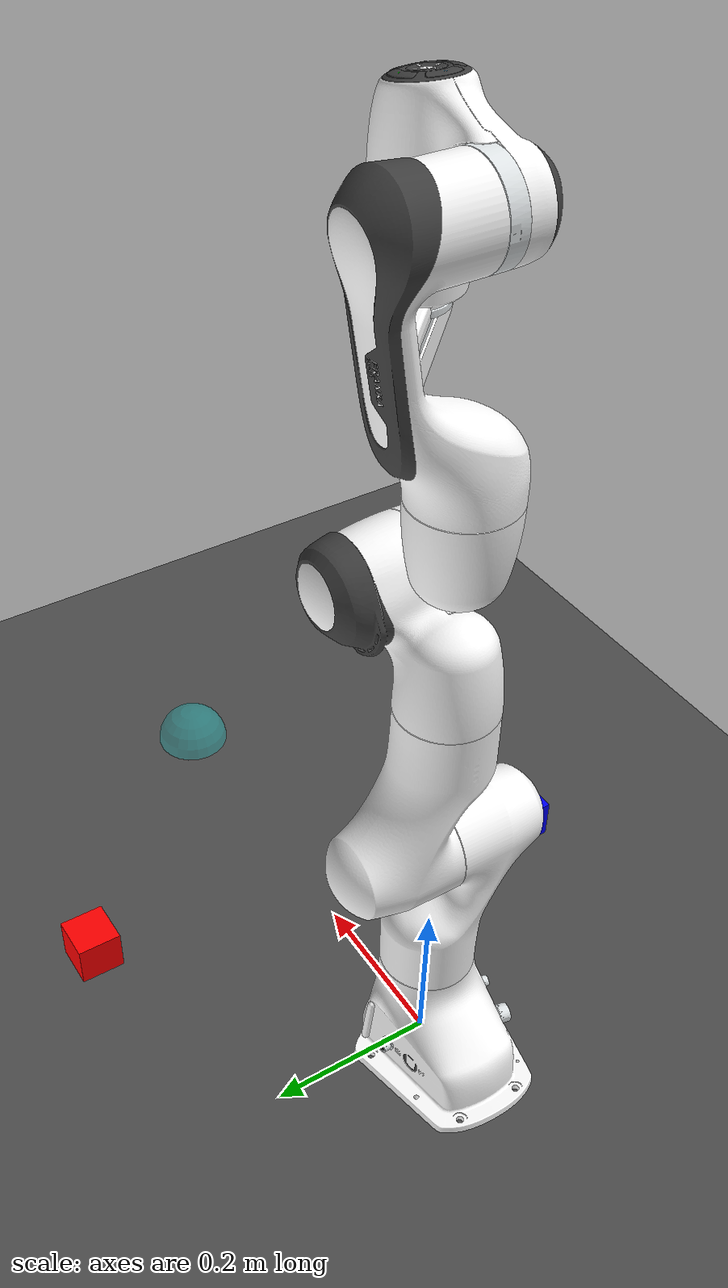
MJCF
<?xml version='1.0' encoding='utf-8'?>
<mujoco model="single_panda_stacking"><compiler angle="radian" meshdir="assets" autolimits="true" />

  <option integrator="implicitfast" />

  <default>
    <default class="panda">
      <material specular="0.5" shininess="0.25" />
      <joint armature="0.1" damping="1" axis="0 0 1" range="-2.8973 2.8973" />
      <general dyntype="none" biastype="affine" ctrlrange="-2.8973 2.8973" forcerange="-87 87" />
      <default class="finger">
        <joint axis="0 1 0" type="slide" range="0 0.04" />
      </default>

      <default class="visual">
        <geom type="mesh" contype="0" conaffinity="0" group="2" />
      </default>
      <default class="collision">
        <geom type="mesh" group="3" />
        <default class="fingertip_pad_collision_1">
          <geom type="box" size="0.0085 0.004 0.0085" pos="0 0.0055 0.0445" />
        </default>
        <default class="fingertip_pad_collision_2">
          <geom type="box" size="0.003 0.002 0.003" pos="0.0055 0.002 0.05" />
        </default>
        <default class="fingertip_pad_collision_3">
          <geom type="box" size="0.003 0.002 0.003" pos="-0.0055 0.002 0.05" />
        </default>
        <default class="fingertip_pad_collision_4">
          <geom type="box" size="0.003 0.002 0.0035" pos="0.0055 0.002 0.0395" />
        </default>
        <default class="fingertip_pad_collision_5">
          <geom type="box" size="0.003 0.002 0.0035" pos="-0.0055 0.002 0.0395" />
        </default>
      </default>
    </default>
  </default>

  <asset>
    <material class="panda" name="white" rgba="1 1 1 1" />
    <material class="panda" name="off_white" rgba="0.901961 0.921569 0.929412 1" />
    <material class="panda" name="black" rgba="0.25 0.25 0.25 1" />
    <material class="panda" name="green" rgba="0 1 0 1" />
    <material class="panda" name="light_blue" rgba="0.039216 0.541176 0.780392 1" />

    <mesh name="link0_c" file="E:/6-months-internship-projects/act2/franka_emika_panda/assets/link0.stl" />
    <mesh name="link1_c" file="E:/6-months-internship-projects/act2/franka_emika_panda/assets/link1.stl" />
    <mesh name="link2_c" file="E:/6-months-internship-projects/act2/franka_emika_panda/assets/link2.stl" />
    <mesh name="link3_c" file="E:/6-months-internship-projects/act2/franka_emika_panda/assets/link3.stl" />
    <mesh name="link4_c" file="E:/6-months-internship-projects/act2/franka_emika_panda/assets/link4.stl" />
    <mesh name="link5_c0" file="E:/6-months-internship-projects/act2/franka_emika_panda/assets/link5_collision_0.obj" />
    <mesh name="link5_c1" file="E:/6-months-internship-projects/act2/franka_emika_panda/assets/link5_collision_1.obj" />
    <mesh name="link5_c2" file="E:/6-months-internship-projects/act2/franka_emika_panda/assets/link5_collision_2.obj" />
    <mesh name="link6_c" file="E:/6-months-internship-projects/act2/franka_emika_panda/assets/link6.stl" />
    <mesh name="link7_c" file="E:/6-months-internship-projects/act2/franka_emika_panda/assets/link7.stl" />
    <mesh name="hand_c" file="E:/6-months-internship-projects/act2/franka_emika_panda/assets/hand.stl" />

    <mesh file="E:/6-months-internship-projects/act2/franka_emika_panda/assets/link0_0.obj" />
    <mesh file="E:/6-months-internship-projects/act2/franka_emika_panda/assets/link0_1.obj" />
    <mesh file="E:/6-months-internship-projects/act2/franka_emika_panda/assets/link0_2.obj" />
    <mesh file="E:/6-months-internship-projects/act2/franka_emika_panda/assets/link0_3.obj" />
    <mesh file="E:/6-months-internship-projects/act2/franka_emika_panda/assets/link0_4.obj" />
    <mesh file="E:/6-months-internship-projects/act2/franka_emika_panda/assets/link0_5.obj" />
    <mesh file="E:/6-months-internship-projects/act2/franka_emika_panda/assets/link0_7.obj" />
    <mesh file="E:/6-months-internship-projects/act2/franka_emika_panda/assets/link0_8.obj" />
    <mesh file="E:/6-months-internship-projects/act2/franka_emika_panda/assets/link0_9.obj" />
    <mesh file="E:/6-months-internship-projects/act2/franka_emika_panda/assets/link0_10.obj" />
    <mesh file="E:/6-months-internship-projects/act2/franka_emika_panda/assets/link0_11.obj" />
    <mesh file="E:/6-months-internship-projects/act2/franka_emika_panda/assets/link1.obj" />
    <mesh file="E:/6-months-internship-projects/act2/franka_emika_panda/assets/link2.obj" />
    <mesh file="E:/6-months-internship-projects/act2/franka_emika_panda/assets/link3_0.obj" />
    <mesh file="E:/6-months-internship-projects/act2/franka_emika_panda/assets/link3_1.obj" />
    <mesh file="E:/6-months-internship-projects/act2/franka_emika_panda/assets/link3_2.obj" />
    <mesh file="E:/6-months-internship-projects/act2/franka_emika_panda/assets/link3_3.obj" />
    <mesh file="E:/6-months-internship-projects/act2/franka_emika_panda/assets/link4_0.obj" />
    <mesh file="E:/6-months-internship-projects/act2/franka_emika_panda/assets/link4_1.obj" />
    <mesh file="E:/6-months-internship-projects/act2/franka_emika_panda/assets/link4_2.obj" />
    <mesh file="E:/6-months-internship-projects/act2/franka_emika_panda/assets/link4_3.obj" />
    <mesh file="E:/6-months-internship-projects/act2/franka_emika_panda/assets/link5_0.obj" />
    <mesh file="E:/6-months-internship-projects/act2/franka_emika_panda/assets/link5_1.obj" />
    <mesh file="E:/6-months-internship-projects/act2/franka_emika_panda/assets/link5_2.obj" />
    <mesh file="E:/6-months-internship-projects/act2/franka_emika_panda/assets/link6_0.obj" />
    <mesh file="E:/6-months-internship-projects/act2/franka_emika_panda/assets/link6_1.obj" />
    <mesh file="E:/6-months-internship-projects/act2/franka_emika_panda/assets/link6_2.obj" />
    <mesh file="E:/6-months-internship-projects/act2/franka_emika_panda/assets/link6_3.obj" />
    <mesh file="E:/6-months-internship-projects/act2/franka_emika_panda/assets/link6_4.obj" />
    <mesh file="E:/6-months-internship-projects/act2/franka_emika_panda/assets/link6_5.obj" />
    <mesh file="E:/6-months-internship-projects/act2/franka_emika_panda/assets/link6_6.obj" />
    <mesh file="E:/6-months-internship-projects/act2/franka_emika_panda/assets/link6_7.obj" />
    <mesh file="E:/6-months-internship-projects/act2/franka_emika_panda/assets/link6_8.obj" />
    <mesh file="E:/6-months-internship-projects/act2/franka_emika_panda/assets/link6_9.obj" />
    <mesh file="E:/6-months-internship-projects/act2/franka_emika_panda/assets/link6_10.obj" />
    <mesh file="E:/6-months-internship-projects/act2/franka_emika_panda/assets/link6_11.obj" />
    <mesh file="E:/6-months-internship-projects/act2/franka_emika_panda/assets/link6_12.obj" />
    <mesh file="E:/6-months-internship-projects/act2/franka_emika_panda/assets/link6_13.obj" />
    <mesh file="E:/6-months-internship-projects/act2/franka_emika_panda/assets/link6_14.obj" />
    <mesh file="E:/6-months-internship-projects/act2/franka_emika_panda/assets/link6_15.obj" />
    <mesh file="E:/6-months-internship-projects/act2/franka_emika_panda/assets/link6_16.obj" />
    <mesh file="E:/6-months-internship-projects/act2/franka_emika_panda/assets/link7_0.obj" />
    <mesh file="E:/6-months-internship-projects/act2/franka_emika_panda/assets/link7_1.obj" />
    <mesh file="E:/6-months-internship-projects/act2/franka_emika_panda/assets/link7_2.obj" />
    <mesh file="E:/6-months-internship-projects/act2/franka_emika_panda/assets/link7_3.obj" />
    <mesh file="E:/6-months-internship-projects/act2/franka_emika_panda/assets/link7_4.obj" />
    <mesh file="E:/6-months-internship-projects/act2/franka_emika_panda/assets/link7_5.obj" />
    <mesh file="E:/6-months-internship-projects/act2/franka_emika_panda/assets/link7_6.obj" />
    <mesh file="E:/6-months-internship-projects/act2/franka_emika_panda/assets/link7_7.obj" />
    <mesh file="E:/6-months-internship-projects/act2/franka_emika_panda/assets/hand_0.obj" />
    <mesh file="E:/6-months-internship-projects/act2/franka_emika_panda/assets/hand_1.obj" />
    <mesh file="E:/6-months-internship-projects/act2/franka_emika_panda/assets/hand_2.obj" />
    <mesh file="E:/6-months-internship-projects/act2/franka_emika_panda/assets/hand_3.obj" />
    <mesh file="E:/6-months-internship-projects/act2/franka_emika_panda/assets/hand_4.obj" />
    <mesh file="E:/6-months-internship-projects/act2/franka_emika_panda/assets/finger_0.obj" />
    <mesh file="E:/6-months-internship-projects/act2/franka_emika_panda/assets/finger_1.obj" />
  </asset>

  <keyframe>
    <key name="home" qpos="0 0 0 -1.57079 0 1.57079 -0.7853 0.04 0.04" ctrl="0 0 0 -1.57079 0 1.57079 -0.7853 255" />
  </keyframe>

  <worldbody><light directional="true" pos="0 0 3" dir="0 0 -1" /><geom name="floor_global" type="plane" pos="0 0 0" size="2 2 0.1" rgba=".3 .3 .3 1" /><body name="panda_base_mount" pos="0 0 0" euler="0 0 0"><body name="panda_link0" childclass="panda">
      <inertial mass="0.629769" pos="-0.041018 -0.00014 0.049974" fullinertia="0.00315 0.00388 0.004285 8.2904e-7 0.00015 8.2299e-6" />
      <geom mesh="link0_0" material="off_white" class="visual" />
      <geom mesh="link0_1" material="black" class="visual" />
      <geom mesh="link0_2" material="off_white" class="visual" />
      <geom mesh="link0_3" material="black" class="visual" />
      <geom mesh="link0_4" material="off_white" class="visual" />
      <geom mesh="link0_5" material="black" class="visual" />
      <geom mesh="link0_7" material="white" class="visual" />
      <geom mesh="link0_8" material="white" class="visual" />
      <geom mesh="link0_9" material="black" class="visual" />
      <geom mesh="link0_10" material="off_white" class="visual" />
      <geom mesh="link0_11" material="white" class="visual" />
      <geom mesh="link0_c" class="collision" />
      <body name="panda_link1" pos="0 0 0.333">
        <inertial mass="4.970684" pos="0.003875 0.002081 -0.04762" fullinertia="0.70337 0.70661 0.0091170 -0.00013900 0.0067720 0.019169" />
        <joint name="panda_joint1" />
        <geom material="white" mesh="link1" class="visual" />
        <geom mesh="link1_c" class="collision" />
        <body name="panda_link2" quat="1 -1 0 0">
          <inertial mass="0.646926" pos="-0.003141 -0.02872 0.003495" fullinertia="0.0079620 2.8110e-2 2.5995e-2 -3.925e-3 1.0254e-2 7.04e-4" />
          <joint name="panda_joint2" range="-1.7628 1.7628" />
          <geom material="white" mesh="link2" class="visual" />
          <geom mesh="link2_c" class="collision" />
          <body name="panda_link3" pos="0 -0.316 0" quat="1 1 0 0">
            <joint name="panda_joint3" />
            <inertial mass="3.228604" pos="2.7518e-2 3.9252e-2 -6.6502e-2" fullinertia="3.7242e-2 3.6155e-2 1.083e-2 -4.761e-3 -1.1396e-2 -1.2805e-2" />
            <geom mesh="link3_0" material="white" class="visual" />
            <geom mesh="link3_1" material="white" class="visual" />
            <geom mesh="link3_2" material="white" class="visual" />
            <geom mesh="link3_3" material="black" class="visual" />
            <geom mesh="link3_c" class="collision" />
            <body name="panda_link4" pos="0.0825 0 0" quat="1 1 0 0">
              <inertial mass="3.587895" pos="-5.317e-2 1.04419e-1 2.7454e-2" fullinertia="2.5853e-2 1.9552e-2 2.8323e-2 7.796e-3 -1.332e-3 8.641e-3" />
              <joint name="panda_joint4" range="-3.0718 -0.0698" />
              <geom mesh="link4_0" material="white" class="visual" />
              <geom mesh="link4_1" material="white" class="visual" />
              <geom mesh="link4_2" material="black" class="visual" />
              <geom mesh="link4_3" material="white" class="visual" />
              <geom mesh="link4_c" class="collision" />
              <body name="panda_link5" pos="-0.0825 0.384 0" quat="1 -1 0 0">
                <inertial mass="1.225946" pos="-1.1953e-2 4.1065e-2 -3.8437e-2" fullinertia="3.5549e-2 2.9474e-2 8.627e-3 -2.117e-3 -4.037e-3 2.29e-4" />
                <joint name="panda_joint5" />
                <geom mesh="link5_0" material="black" class="visual" />
                <geom mesh="link5_1" material="white" class="visual" />
                <geom mesh="link5_2" material="white" class="visual" />
                <geom mesh="link5_c0" class="collision" />
                <geom mesh="link5_c1" class="collision" />
                <geom mesh="link5_c2" class="collision" />
                <body name="panda_link6" quat="1 1 0 0">
                  <inertial mass="1.666555" pos="6.0149e-2 -1.4117e-2 -1.0517e-2" fullinertia="1.964e-3 4.354e-3 5.433e-3 1.09e-4 -1.158e-3 3.41e-4" />
                  <joint name="panda_joint6" range="-0.0175 3.7525" />
                  <geom mesh="link6_0" material="off_white" class="visual" />
                  <geom mesh="link6_1" material="white" class="visual" />
                  <geom mesh="link6_2" material="black" class="visual" />
                  <geom mesh="link6_3" material="white" class="visual" />
                  <geom mesh="link6_4" material="white" class="visual" />
                  <geom mesh="link6_5" material="white" class="visual" />
                  <geom mesh="link6_6" material="white" class="visual" />
                  <geom mesh="link6_7" material="light_blue" class="visual" />
                  <geom mesh="link6_8" material="light_blue" class="visual" />
                  <geom mesh="link6_9" material="black" class="visual" />
                  <geom mesh="link6_10" material="black" class="visual" />
                  <geom mesh="link6_11" material="white" class="visual" />
                  <geom mesh="link6_12" material="green" class="visual" />
                  <geom mesh="link6_13" material="white" class="visual" />
                  <geom mesh="link6_14" material="black" class="visual" />
                  <geom mesh="link6_15" material="black" class="visual" />
                  <geom mesh="link6_16" material="white" class="visual" />
                  <geom mesh="link6_c" class="collision" />
                  <body name="panda_link7" pos="0.088 0 0" quat="1 1 0 0">
                    <inertial mass="7.35522e-01" pos="1.0517e-2 -4.252e-3 6.1597e-2" fullinertia="1.2516e-2 1.0027e-2 4.815e-3 -4.28e-4 -1.196e-3 -7.41e-4" />
                    <joint name="panda_joint7" />
                    <geom mesh="link7_0" material="white" class="visual" />
                    <geom mesh="link7_1" material="black" class="visual" />
                    <geom mesh="link7_2" material="black" class="visual" />
                    <geom mesh="link7_3" material="black" class="visual" />
                    <geom mesh="link7_4" material="black" class="visual" />
                    <geom mesh="link7_5" material="black" class="visual" />
                    <geom mesh="link7_6" material="black" class="visual" />
                    <geom mesh="link7_7" material="white" class="visual" />
                    <geom mesh="link7_c" class="collision" />
                    <body name="panda_hand" pos="0 0 0.107" quat="0.9238795 0 0 -0.3826834">
                      <inertial mass="0.73" pos="-0.01 0 0.03" diaginertia="0.001 0.0025 0.0017" />
                      <geom mesh="hand_0" material="off_white" class="visual" />
                      <geom mesh="hand_1" material="black" class="visual" />
                      <geom mesh="hand_2" material="black" class="visual" />
                      <geom mesh="hand_3" material="white" class="visual" />
                      <geom mesh="hand_4" material="off_white" class="visual" />
                      <geom mesh="hand_c" class="collision" />
                      <body name="panda_left_finger" pos="0 0 0.0584">
                        <inertial mass="0.015" pos="0 0 0" diaginertia="2.375e-6 2.375e-6 7.5e-7" />
                        <joint name="panda_finger_joint1" class="finger" />
                        <geom mesh="finger_0" material="off_white" class="visual" />
                        <geom mesh="finger_1" material="black" class="visual" />
                        <geom mesh="finger_0" class="collision" />
                        <geom class="fingertip_pad_collision_1" />
                        <geom class="fingertip_pad_collision_2" />
                        <geom class="fingertip_pad_collision_3" />
                        <geom class="fingertip_pad_collision_4" />
                        <geom class="fingertip_pad_collision_5" />
                      </body>
                      <body name="panda_right_finger" pos="0 0 0.0584" quat="0 0 0 1">
                        <inertial mass="0.015" pos="0 0 0" diaginertia="2.375e-6 2.375e-6 7.5e-7" />
                        <joint name="panda_finger_joint2" class="finger" />
                        <geom mesh="finger_0" material="off_white" class="visual" />
                        <geom mesh="finger_1" material="black" class="visual" />
                        <geom mesh="finger_0" class="collision" />
                        <geom class="fingertip_pad_collision_1" />
                        <geom class="fingertip_pad_collision_2" />
                        <geom class="fingertip_pad_collision_3" />
                        <geom class="fingertip_pad_collision_4" />
                        <geom class="fingertip_pad_collision_5" />
                      </body>
                    </body>
                  </body>
                </body>
              </body>
            </body>
          </body>
        </body>
      </body>
    </body>
  </body><body name="cube_1" pos="0.3 0.3 0.028"><freejoint /><geom name="cube_1_geom" type="box" size="0.028 0.028 0.028" rgba="1 0 0 1" mass="0.05" friction="3.0 0.1 0.005" condim="4" solref="0.01 1" solimp="0.99 0.99 0.001" priority="1" /></body><body name="cube_3" pos="0.2 -0.3 0.028"><freejoint /><geom name="cube_3_geom" type="box" size="0.028 0.028 0.028" rgba="0 0 1 1" mass="0.05" friction="3.0 0.1 0.005" condim="4" solref="0.01 1" solimp="0.99 0.99 0.001" priority="1" /></body><body name="cube_4" pos="0.4 -0.3 0.028"><freejoint /><geom name="cube_4_geom" type="box" size="0.028 0.028 0.028" rgba="1 1 0 1" mass="0.05" friction="3.0 0.1 0.005" condim="4" solref="0.01 1" solimp="0.99 0.99 0.001" priority="1" /></body><site name="target_zone" pos="0.6 0.0 0.0" size="0.05" rgba="0 1 1 0.3" /></worldbody><tendon>
    <fixed name="panda_split">
      <joint joint="panda_finger_joint1" coef="0.5" />
      <joint joint="panda_finger_joint2" coef="0.5" />
    </fixed>
  </tendon>

  <equality>
    <joint joint1="panda_finger_joint1" joint2="panda_finger_joint2" solimp="0.95 0.99 0.001" solref="0.005 1" />
  </equality>

  <actuator>
    <general class="panda" name="panda_actuator1" joint="panda_joint1" gainprm="4500" biasprm="0 -4500 -450" />
    <general class="panda" name="panda_actuator2" joint="panda_joint2" gainprm="4500" biasprm="0 -4500 -450" ctrlrange="-1.7628 1.7628" />
    <general class="panda" name="panda_actuator3" joint="panda_joint3" gainprm="3500" biasprm="0 -3500 -350" />
    <general class="panda" name="panda_actuator4" joint="panda_joint4" gainprm="3500" biasprm="0 -3500 -350" ctrlrange="-3.0718 -0.0698" />
    <general class="panda" name="panda_actuator5" joint="panda_joint5" gainprm="2000" biasprm="0 -2000 -200" forcerange="-12 12" />
    <general class="panda" name="panda_actuator6" joint="panda_joint6" gainprm="2000" biasprm="0 -2000 -200" forcerange="-12 12" ctrlrange="-0.0175 3.7525" />
    <general class="panda" name="panda_actuator7" joint="panda_joint7" gainprm="2000" biasprm="0 -2000 -200" forcerange="-12 12" />

    <general class="panda" name="panda_actuator8" tendon="panda_split" forcerange="-100 100" ctrlrange="0 255" gainprm="0.01568627451 0 0" biasprm="0 -100 -10" />
  </actuator>

  <contact>
    <exclude body1="panda_link0" body2="panda_link1" />
  </contact>
</mujoco>
